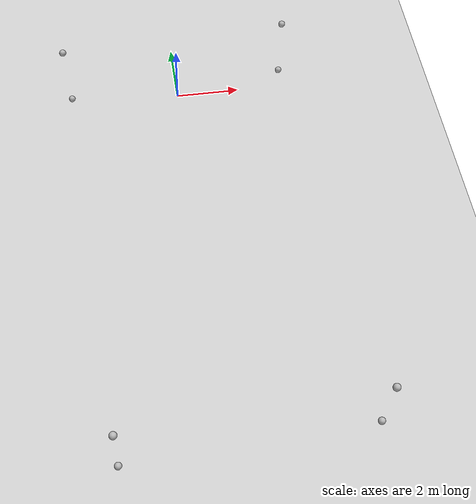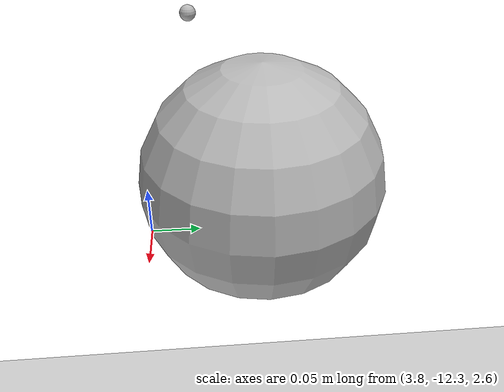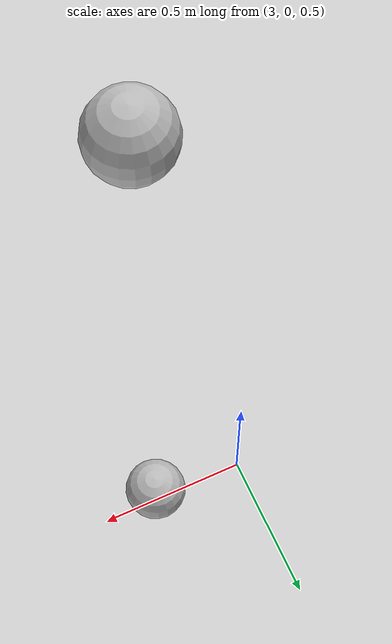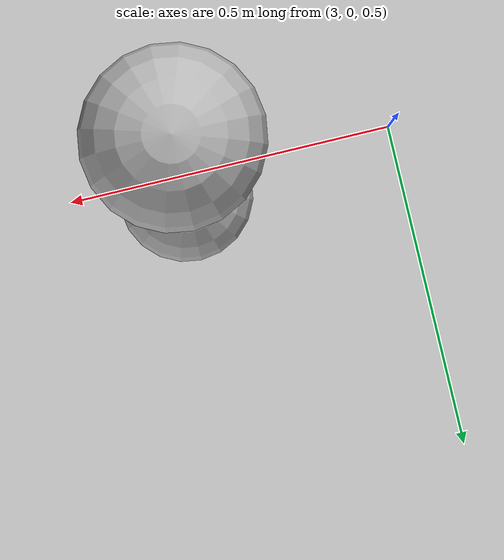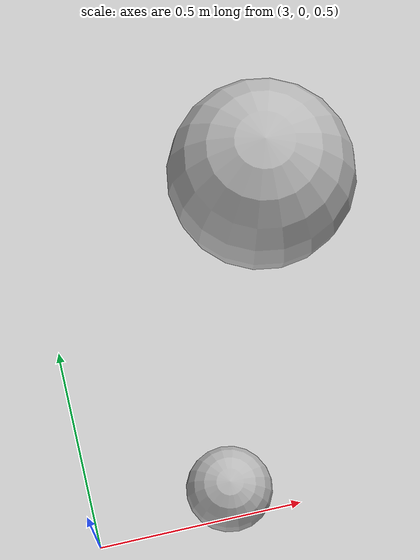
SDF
<?xml version="1.0"?>
<sdf version="1.5">
  <world name="default">
    <!-- A global light source -->
    <include>
      <uri>model://sun</uri>
    </include>
    <!-- A ground plane -->
    <include>
      <uri>model://ground_plane</uri>
    </include>

    <!-- Anchor 0 -->
    <include>
      <name>uwb_anchor_0</name>
      <uri>model://uwb_anchor</uri>
      <pose>3.324 0.035 0.731 0 0 0</pose>
    </include>
    <!-- Anchor 1 -->
    <include>
      <name>uwb_anchor_1</name>
      <uri>model://uwb_anchor</uri>
      <pose>-3.419 -0.252 0.664 0 0 0</pose>
    </include>
    <!-- Anchor 2 -->
    <include>
      <name>uwb_anchor_2</name>
      <uri>model://uwb_anchor</uri>
      <pose>-2.938 -12.468 0.637 0 0 0</pose>
    </include>
    <!-- Anchor 3 -->
    <include>
      <name>uwb_anchor_3</name>
      <uri>model://uwb_anchor</uri>
      <pose>3.871 -12.17 0.562 0 0 0</pose>
    </include>
    <!-- Anchor 4 -->
    <include>
      <name>uwb_anchor_4</name>
      <uri>model://uwb_anchor</uri>
      <pose>-3.449 -0.31 2.805 0 0 0</pose>
    </include>
    <!-- Anchor 5 -->
    <include>
      <name>uwb_anchor_5</name>
      <uri>model://uwb_anchor</uri>
      <pose>-2.881 -12.518 2.823 0 0 0</pose>
    </include>
    <!-- Anchor 6 -->
    <include>
      <name>uwb_anchor_6</name>
      <uri>model://uwb_anchor</uri>
      <pose>3.311 0.03 2.779 0 0 0</pose>
    </include>
    <!-- Anchor 7 -->
    <include>
      <name>uwb_anchor_7</name>
      <uri>model://uwb_anchor</uri>
      <pose>3.889 -12.194 2.72 0 0 0</pose>
    </include>

    <physics name='default_physics' default='0' type='ode'>
      <gravity>0 0 -9.8066</gravity>
      <ode>
        <solver>
          <type>quick</type>
          <iters>10</iters>
          <sor>1.3</sor>
          <use_dynamic_moi_rescaling>0</use_dynamic_moi_rescaling>
        </solver>
        <constraints>
          <cfm>0</cfm>
          <erp>0.2</erp>
          <contact_max_correcting_vel>100</contact_max_correcting_vel>
          <contact_surface_layer>0.001</contact_surface_layer>
        </constraints>
      </ode>
      <max_step_size>0.004</max_step_size>
      <real_time_factor>1</real_time_factor>
      <real_time_update_rate>250</real_time_update_rate>
      <magnetic_field>6.0e-6 2.3e-5 -4.2e-5</magnetic_field>
    </physics>
  </world>
</sdf>

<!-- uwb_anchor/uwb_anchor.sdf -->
<sdf version='1.6'>
  <model name='uwb_anchor'>
    <static>1</static>
    <pose>0 0 0 0 0 0</pose>
    <link name="uwb_anchor_head">
      <visual name='uwb_anchor_head_visual'>
        <pose>0 0 0 0 0 0</pose>
        <geometry>
          <sphere>
            <radius>0.1 0.1 0.1</radius>
          </sphere>
        </geometry>
      </visual>
    </link>
    <plugin name="gazebo_ros_uwb" filename="libros2_px4_gazebo_uwb.so">
      <link_name>uwb_anchor_head</link_name>
      <update_rate>20</update_rate>
      <anchor_offset>0.2</anchor_offset>
    </plugin>
  </model>
</sdf>
